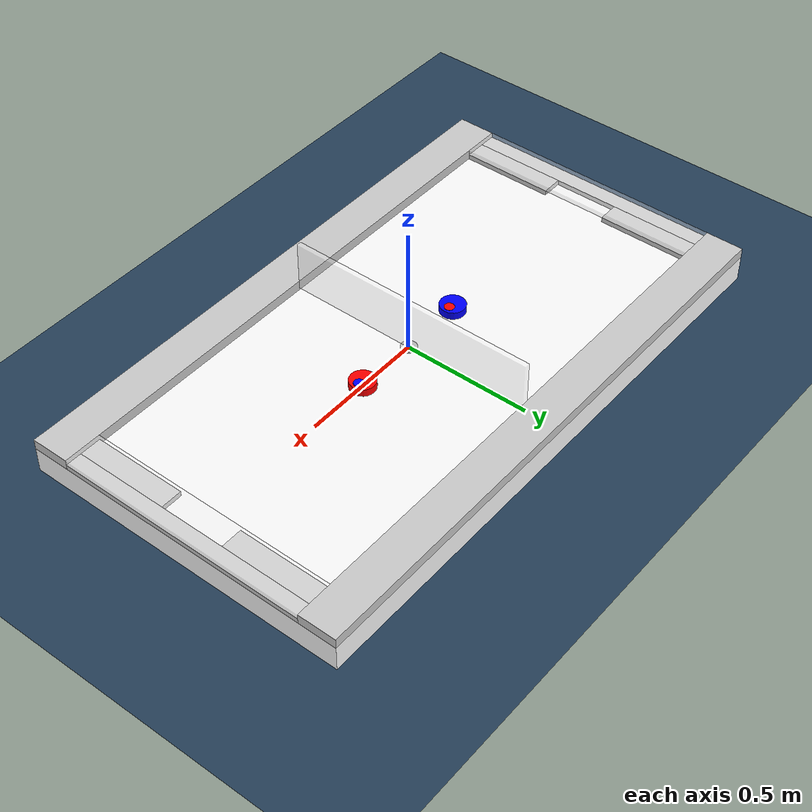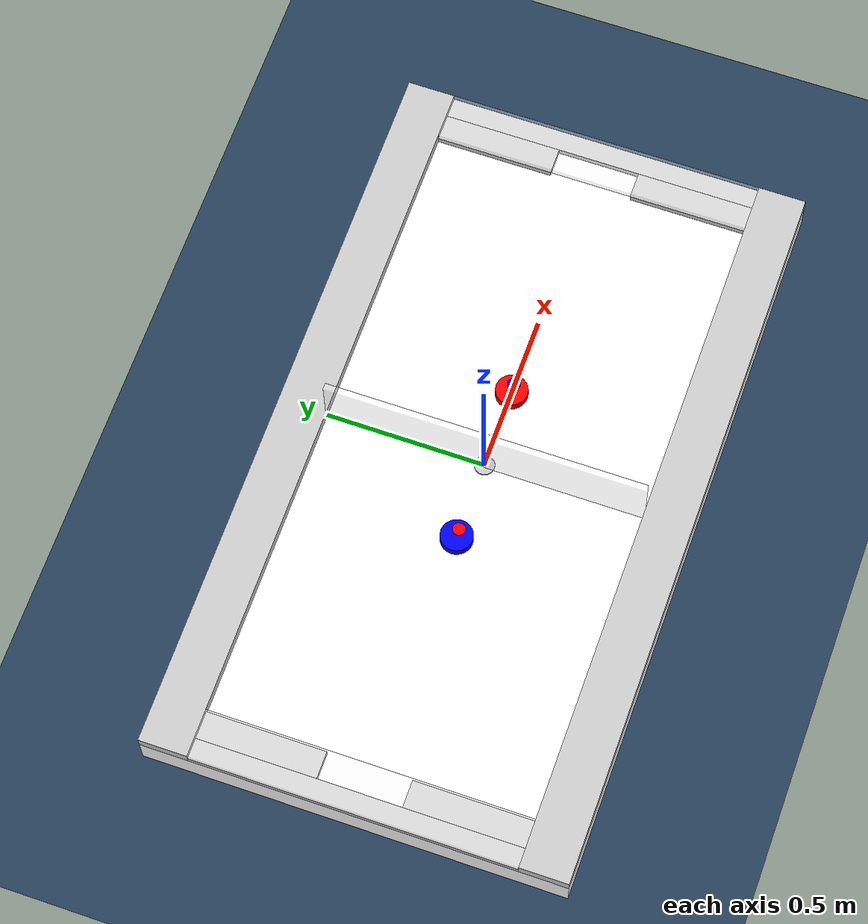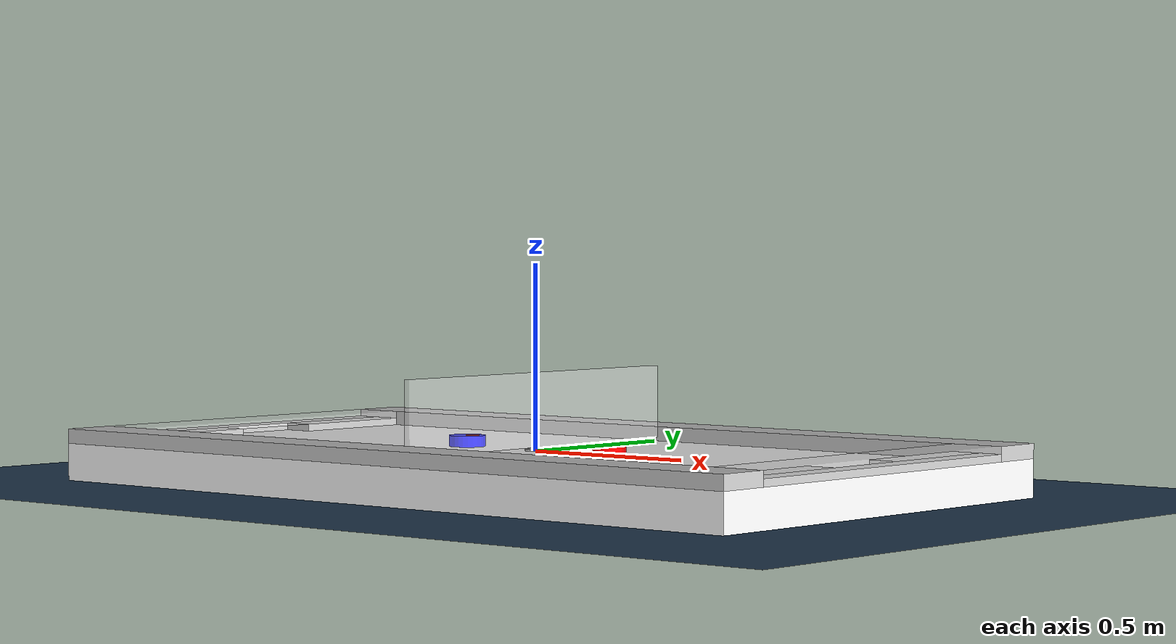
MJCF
<mujoco model="table">

    <option timestep="0.001" cone="elliptic" impratio="1"/>

    <asset>
        <material name="grey" specular="0.5" shininess="0.25" rgba="0.8 0.8 0.8 1"/>
        <material name="white" specular="0.5" shininess="0.25" rgba="1.0 1.0 1.0 1"/>
        <material name="red" specular="0.5" shininess="0.25" rgba="1.0 0.0 0.0 1"/>
        <material name="blue" specular="0.5" shininess="0.25" rgba="0.0 0.0 1.0 1"/>
        <material name="transparent" specular="0.5" shininess="0.25" rgba="0.0 0.0 1.0 0"/>
        <material name="translucent" specular="0.5" shininess="0.25" rgba="1.0 1.0 1.0 0.3"/>

        <texture type="skybox" builtin="gradient" rgb1="0.3 0.5 0.7" rgb2="0 0 0" width="512"
            height="3072"/>
        <texture type="2d" name="groundplane" builtin="checker" mark="edge" rgb1="0.2 0.3 0.4"
            rgb2="0.1 0.2 0.3" markrgb="0.8 0.8 0.8" width="300" height="300"/>
        <material name="groundplane" texture="groundplane" texuniform="true" texrepeat="5 5"
            reflectance="0.2"/>
    </asset>

    <default>
        <geom condim="4" solref="0.02 0.3"/>
        <default class="rim">
            <geom type="box" material="grey" condim="6" friction="10000 0.0 0.0" priority="1"
                  solref="-2000000 -250" solimp="0.99 0.999 0.001 0.5 2"/>
        </default>
    </default>

    <worldbody>
        <body name="table">
            <body name="table_surface">
                <geom name="surface" type="box" material="white" size="1.15 0.65 0.065" pos="0 0 -0.065"
                      condim="4" friction="0.08 0.08 0.0" priority="1"
                      solref="0.0125 0.5" solimp="0.9 0.999 0.001 0.5 2"/>
            </body>
            <body name="rim">
                <geom name="rim_home_l" class="rim" size="0.0425 0.185 0.01" pos="-1.0425 0.315 0.01"/>
                <geom name="rim_home_r" class="rim" size="0.0425 0.185 0.01" pos="-1.0425 -0.315 0.01"/>
                <geom name="rim_home_back" class="rim" size="0.0325 0.50 0.01" pos="-1.1175 0 0.01"/>
                <geom name="rim_home_top" class="rim" material="translucent" size="0.075 0.50 0.01" pos="-1.075 0 0.03"/>

                <geom name="rim_left" class="rim" size="1.15 0.075 0.02" pos="0 0.575 0.02"/>
                <geom name="rim_right" class="rim" size="1.15 0.075 0.02" pos="0 -0.575 0.02"/>

                <geom name="rim_away_l" class="rim" size="0.0425 0.185 0.01" pos="1.0425 0.315 0.01"/>
                <geom name="rim_away_r" class="rim" size="0.0425 0.185 0.01" pos="1.0425 -0.315 0.01"/>
                <geom name="rim_away_back" class="rim" size="0.0325 0.50 0.01" pos="1.1175 0 0.01"/>
                <geom name="rim_away_top" class="rim" material="translucent" size="0.075 0.50 0.01" pos="1.075 0 0.03"/>
            </body>
            <body name="separator">
                <geom name="separator" type="box" material="translucent" size="0.01 0.5 0.1" pos="0 0 0.11"
                      condim="6" friction="10000 0.0 0.0" priority="1"
                      solref="-2000000 -250" solimp="0.99 0.999 0.001 0.5 2"/>
            </body>
        </body>

        <body name="base" pos="0 0 0.0025">
            <joint name="puck_x" type="slide" axis="1 0 0" damping="0.005" limited="false"/>
            <joint name="puck_y" type="slide" axis="0 1 0" damping="0.005" limited="false"/>
            <joint name="puck_yaw" type="hinge" axis="0 0 1" damping="2e-6" limited="false"/>
            <body name="puck">
                <geom pos="0 0 0" name="puck" type="cylinder" material="grey" size="0.031 0.0025"
                      condim="4" priority="0"/>
                <geom pos="0.02 0 0" type="cylinder" material="white" size="0.01 0.0026"
                      condim="4" contype="0" conaffinity="0"/>
                <inertial pos="0 0 0" mass="0.013" diaginertia="2.5e-6 2.5e-6 5e-6"/>
            </body>
        </body>

        <body name="base2" pos="-0.25 0 0.015">
            <joint name="mallet1_x" type="slide" axis="1 0 0" damping="0.01" limited="false"/>
            <joint name="mallet1_y" type="slide" axis="0 1 0" damping="0.01" limited="false"/>
            <joint name="mallet1_yaw" type="hinge" axis="0 0 1" damping="2e-6" limited="false"/>
            <body name="mallet1">
                <geom pos="0 0 0" name="mallet1" type="cylinder" material="blue" size="0.05 0.015"
                      condim="1" priority="2" solref="0.0125 1" solimp="0.9 0.999 0.001 0.5 2"/>
                <geom pos="0.02 0 0" type="cylinder" material="red" size="0.02 0.016"
                      condim="4" contype="0" conaffinity="0"/>
                <inertial pos="0 0 0" mass="1" diaginertia="2.5e-6 2.5e-6 5e-6"/>
            </body>
        </body>

        <body name="base3" pos="0.25 0 0.015">
            <joint name="mallet2_x" type="slide" axis="1 0 0" damping="0.01" limited="false"/>
            <joint name="mallet2_y" type="slide" axis="0 1 0" damping="0.01" limited="false"/>
            <joint name="mallet2_yaw" type="hinge" axis="0 0 1" damping="2e-6" limited="false"/>
            <body name="mallet2">
                <geom pos="0 0 0" name="mallet2" type="cylinder" material="red" size="0.05 0.015"
                      condim="1" priority="2" solref="0.0125 1" solimp="0.9 0.999 0.001 0.5 2"/>
                <geom pos="0.02 0 0" type="cylinder" material="blue" size="0.02 0.016"
                      condim="4" contype="0" conaffinity="0"/>
                <inertial pos="0 0 0" mass="1" diaginertia="2.5e-6 2.5e-6 5e-6"/>
            </body>
        </body>
    </worldbody>

    <actuator>
        <motor name="mal1_for_x" joint="mallet1_x" ctrllimited="true" ctrlrange="-5 5"/>
        <motor name="mal1_for_y" joint="mallet1_y" ctrllimited="true" ctrlrange="-5 5"/>
        <motor name="mal2_for_x" joint="mallet2_x" ctrllimited="true" ctrlrange="-5 5"/>
        <motor name="mal2_for_y" joint="mallet2_y" ctrllimited="true" ctrlrange="-5 5"/>
    </actuator>

    <contact>
        <exclude body1="puck" body2="table_surface"/>
    </contact>

    <contact>
        <exclude body1="mallet1" body2="table_surface"/>
    </contact>

    <contact>
        <exclude body1="mallet2" body2="table_surface"/>
    </contact>

    <worldbody>
        <light pos="0 0 3" dir="0 0 -1" directional="true"/>
        <geom pos="0 0 -0.1" name="floor" size="0 0 0.05" type="plane" material="groundplane"/>
    </worldbody>

    <worldbody>
        <body name="puck_record" pos="0 0 0">
            <joint name="puck_record_x" type="slide" axis="1 0 0" damping="0.005" limited="false"/>
            <joint name="puck_record_y" type="slide" axis="0 1 0" damping="0.005" limited="false"/>
            <inertial pos="0 0 0" mass="0.01" diaginertia="2.5e-6 2.5e-6 5e-6"/>
            <body>
                <joint name="puck_record_yaw_vis" type="hinge" axis="0 0 1" damping="2e-6" limited="false"/>
                <geom pos="0 0 0" name="puck_record" type="ellipsoid" size="0.03165 0.03165 0.004" material="transparent"
                  condim="4" friction="0.1 0 0" contype="0" conaffinity="0"/>
            </body>
            <body>
                <joint name="puck_record_yaw" type="hinge" axis="0 0 1" damping="2e-6" limited="false"/>
                <geom pos="0.016 0 0" zaxis="1 0 0" name="puck_record_ori" type="cylinder" material="transparent" size="0.0045 0.016 "
                      condim="4" friction="0.1 0 0" contype="0" conaffinity="0"/>
                <inertial pos="0 0 0" mass="0.01" diaginertia="2.5e-6 2.5e-6 5e-6"/>
            </body>
        </body>
    </worldbody>
</mujoco>
